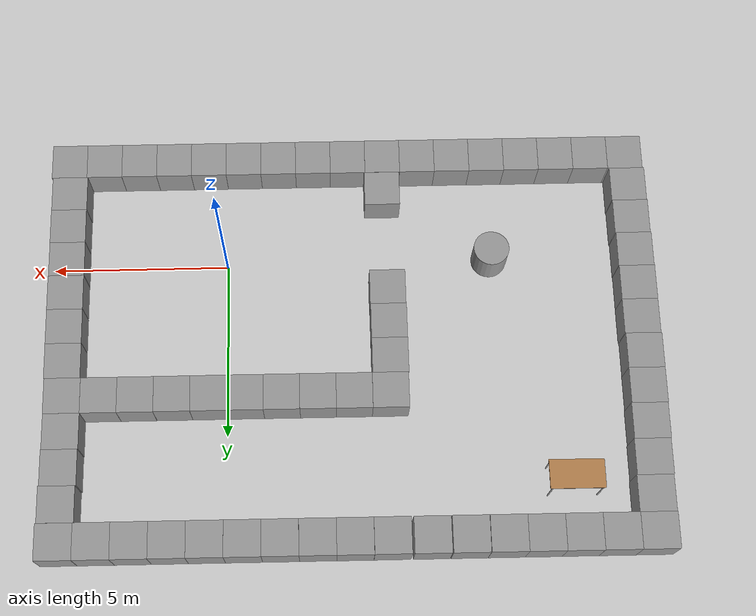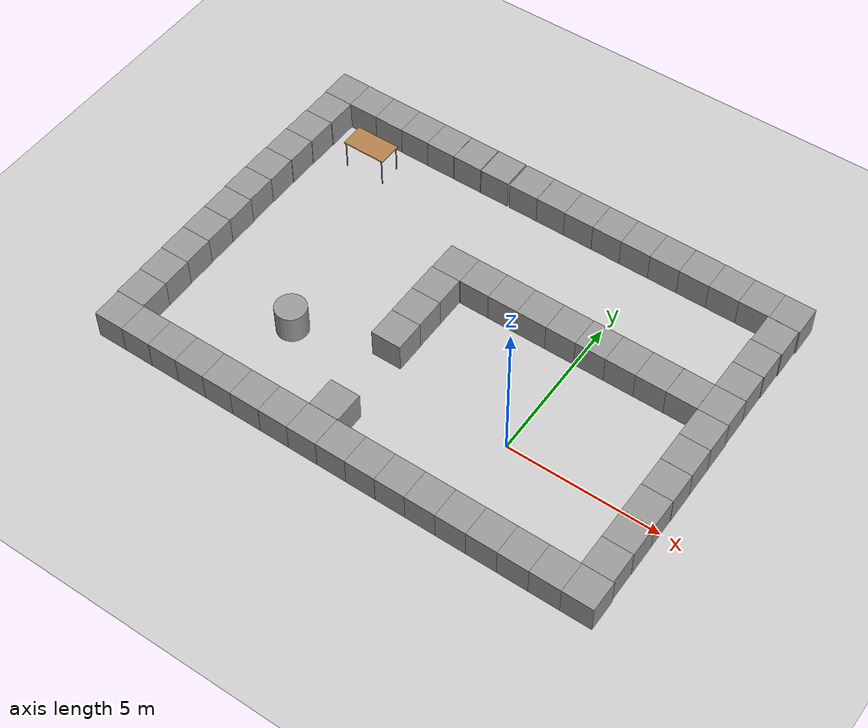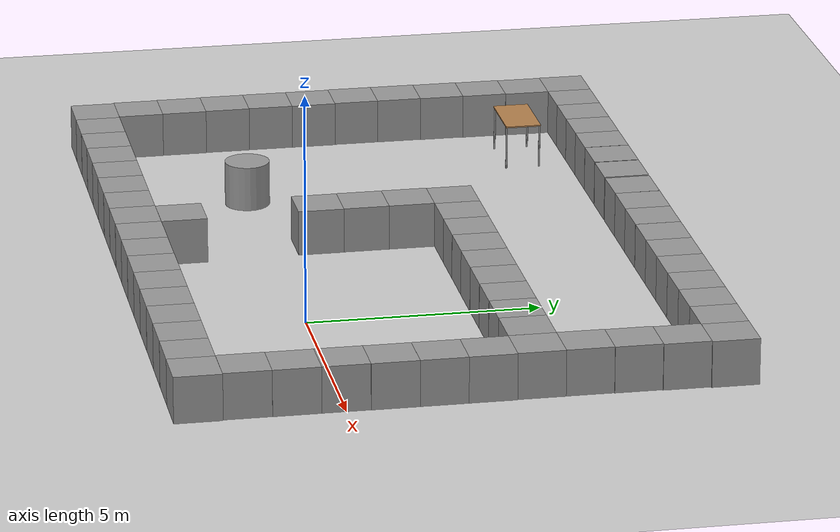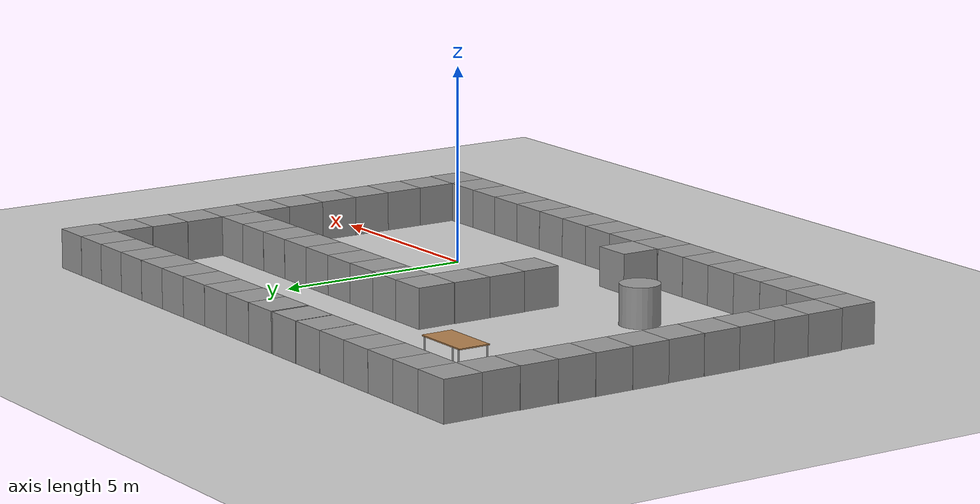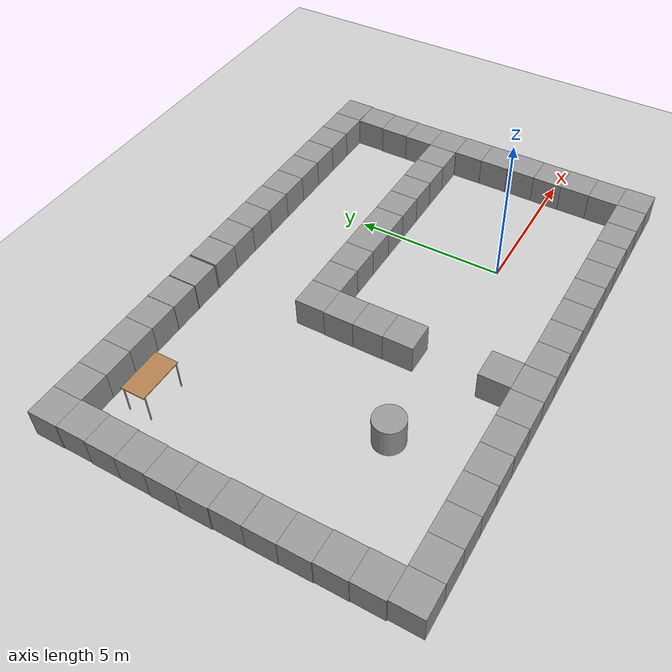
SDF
<sdf version="1.4">
 <world name="default">
  <light name="sun" type="directional">
   <pose>0 0 10 0 -0 0</pose>
   <diffuse>0.8 0.8 0.8 1</diffuse>
   <specular>0.2 0.2 0.2 1</specular>
   <attenuation>
    <range>1000</range>
    <constant>0.9</constant>
    <linear>0.01</linear>
    <quadratic>0.001</quadratic>
   </attenuation>
   <direction>-0.5 0.1 -0.9</direction>
  </light>
  <model name="ground_plane">
   <static>1</static>
   <link name="link">
    <collision name="collision">
     <geometry><plane><normal>0 0 1</normal><size>100 100</size></plane></geometry>
     <surface><friction><ode><mu>100</mu><mu2>50</mu2></ode></friction></surface>
    </collision>
    <visual name="visual">
     <cast_shadows>0</cast_shadows>
     <geometry><plane><normal>0 0 1</normal><size>100 100</size></plane></geometry>
     <material>
      <script><uri>file://media/materials/scripts/gazebo.material</uri><name>Gazebo/Grey</name></script>
     </material>
    </visual>
    <velocity_decay><linear>0</linear><angular>0</angular></velocity_decay>
   </link>
  </model>
  <physics type="ode">
   <max_step_size>0.001</max_step_size>
   <real_time_factor>1</real_time_factor>
   <real_time_update_rate>1000</real_time_update_rate>
   <gravity>0 0 -9.8</gravity>
  </physics>
  <scene><ambient>0.4 0.4 0.4 1</ambient><background>0.7 0.7 0.7 1</background><shadows>1</shadows></scene>
  <spherical_coordinates>
   <surface_model>EARTH_WGS84</surface_model>
   <latitude_deg>0</latitude_deg>
   <longitude_deg>0</longitude_deg>
   <elevation>0</elevation>
   <heading_deg>0</heading_deg>
  </spherical_coordinates>
  <model name="unit_box_7">
   <pose>-0.525235 3.99787 0.5 0 -0 -0.000802</pose>
   <link name="link">
    <inertial>
     <mass>1</mass>
     <inertia><ixx>1</ixx><ixy>0</ixy><ixz>0</ixz><iyy>1</iyy><iyz>0</iyz><izz>1</izz></inertia>
    </inertial>
    <collision name="collision"><geometry><box><size>1 1 1</size></box></geometry></collision>
    <visual name="visual">
     <geometry><box><size>1 1 1</size></box></geometry>
     <material>
      <script><uri>file://media/materials/scripts/gazebo.material</uri><name>Gazebo/Grey</name></script>
     </material>
    </visual>
    <velocity_decay><linear>0</linear><angular>0</angular></velocity_decay>
   </link>
   <static>0</static>
  </model>
  <model name="unit_box_8">
   <pose>0.474774 3.99917 0.5 0 0 -0.000817</pose>
   <link name="link">
    <inertial>
     <mass>1</mass>
     <inertia><ixx>1</ixx><ixy>0</ixy><ixz>0</ixz><iyy>1</iyy><iyz>0</iyz><izz>1</izz></inertia>
    </inertial>
    <collision name="collision"><geometry><box><size>1 1 1</size></box></geometry></collision>
    <visual name="visual">
     <geometry><box><size>1 1 1</size></box></geometry>
     <material>
      <script><uri>file://media/materials/scripts/gazebo.material</uri><name>Gazebo/Grey</name></script>
     </material>
    </visual>
    <velocity_decay><linear>0</linear><angular>0</angular></velocity_decay>
   </link>
   <static>0</static>
  </model>
  <model name="unit_box_9">
   <pose>1.47479 4.0004 0.5 0 -0 -0.00084</pose>
   <link name="link">
    <inertial>
     <mass>1</mass>
     <inertia><ixx>1</ixx><ixy>0</ixy><ixz>0</ixz><iyy>1</iyy><iyz>0</iyz><izz>1</izz></inertia>
    </inertial>
    <collision name="collision"><geometry><box><size>1 1 1</size></box></geometry></collision>
    <visual name="visual">
     <geometry><box><size>1 1 1</size></box></geometry>
     <material>
      <script><uri>file://media/materials/scripts/gazebo.material</uri><name>Gazebo/Grey</name></script>
     </material>
    </visual>
    <velocity_decay><linear>0</linear><angular>0</angular></velocity_decay>
   </link>
   <static>0</static>
  </model>
  <model name="unit_box_10">
   <pose>2.47509 4.0016 0.5 0 0 -0.001434</pose>
   <link name="link">
    <inertial>
     <mass>1</mass>
     <inertia><ixx>1</ixx><ixy>0</ixy><ixz>0</ixz><iyy>1</iyy><iyz>0</iyz><izz>1</izz></inertia>
    </inertial>
    <collision name="collision"><geometry><box><size>1 1 1</size></box></geometry></collision>
    <visual name="visual">
     <geometry><box><size>1 1 1</size></box></geometry>
     <material>
      <script><uri>file://media/materials/scripts/gazebo.material</uri><name>Gazebo/Grey</name></script>
     </material>
    </visual>
    <velocity_decay><linear>0</linear><angular>0</angular></velocity_decay>
   </link>
   <static>0</static>
  </model>
  <model name="unit_box_11">
   <pose>3.47516 4.00138 0.5 0 0 -0.00158</pose>
   <link name="link">
    <inertial>
     <mass>1</mass>
     <inertia><ixx>1</ixx><ixy>0</ixy><ixz>0</ixz><iyy>1</iyy><iyz>0</iyz><izz>1</izz></inertia>
    </inertial>
    <collision name="collision"><geometry><box><size>1 1 1</size></box></geometry></collision>
    <visual name="visual">
     <geometry><box><size>1 1 1</size></box></geometry>
     <material>
      <script><uri>file://media/materials/scripts/gazebo.material</uri><name>Gazebo/Grey</name></script>
     </material>
    </visual>
    <velocity_decay><linear>0</linear><angular>0</angular></velocity_decay>
   </link>
   <static>0</static>
  </model>
  <model name="unit_box_12">
   <pose>4.47567 4.0003 0.5 0 0 -0.000581</pose>
   <link name="link">
    <inertial>
     <mass>1</mass>
     <inertia><ixx>1</ixx><ixy>0</ixy><ixz>0</ixz><iyy>1</iyy><iyz>0</iyz><izz>1</izz></inertia>
    </inertial>
    <collision name="collision"><geometry><box><size>1 1 1</size></box></geometry></collision>
    <visual name="visual">
     <geometry><box><size>1 1 1</size></box></geometry>
     <material>
      <script><uri>file://media/materials/scripts/gazebo.material</uri><name>Gazebo/Grey</name></script>
     </material>
    </visual>
    <velocity_decay><linear>0</linear><angular>0</angular></velocity_decay>
   </link>
   <static>0</static>
  </model>
  <model name="unit_box_13">
   <pose>4.49178 3.00023 0.5 -0 -0 -0.000464</pose>
   <link name="link">
    <inertial>
     <mass>1</mass>
     <inertia><ixx>1</ixx><ixy>0</ixy><ixz>0</ixz><iyy>1</iyy><iyz>0</iyz><izz>1</izz></inertia>
    </inertial>
    <collision name="collision"><geometry><box><size>1 1 1</size></box></geometry></collision>
    <visual name="visual">
     <geometry><box><size>1 1 1</size></box></geometry>
     <material>
      <script><uri>file://media/materials/scripts/gazebo.material</uri><name>Gazebo/Grey</name></script>
     </material>
    </visual>
    <velocity_decay><linear>0</linear><angular>0</angular></velocity_decay>
   </link>
   <static>0</static>
  </model>
  <model name="unit_box_15">
   <pose>4.49385 2.00016 0.5 0 -0 -0.00032</pose>
   <link name="link">
    <inertial>
     <mass>1</mass>
     <inertia><ixx>1</ixx><ixy>0</ixy><ixz>0</ixz><iyy>1</iyy><iyz>0</iyz><izz>1</izz></inertia>
    </inertial>
    <collision name="collision"><geometry><box><size>1 1 1</size></box></geometry></collision>
    <visual name="visual">
     <geometry><box><size>1 1 1</size></box></geometry>
     <material>
      <script><uri>file://media/materials/scripts/gazebo.material</uri><name>Gazebo/Grey</name></script>
     </material>
    </visual>
    <velocity_decay><linear>0</linear><angular>0</angular></velocity_decay>
   </link>
   <static>0</static>
  </model>
  <model name="unit_box_16">
   <pose>4.49609 1.00004 0.5 -0 -0 -7.6e-05</pose>
   <link name="link">
    <inertial>
     <mass>1</mass>
     <inertia><ixx>1</ixx><ixy>0</ixy><ixz>0</ixz><iyy>1</iyy><iyz>0</iyz><izz>1</izz></inertia>
    </inertial>
    <collision name="collision"><geometry><box><size>1 1 1</size></box></geometry></collision>
    <visual name="visual">
     <geometry><box><size>1 1 1</size></box></geometry>
     <material>
      <script><uri>file://media/materials/scripts/gazebo.material</uri><name>Gazebo/Grey</name></script>
     </material>
    </visual>
    <velocity_decay><linear>0</linear><angular>0</angular></velocity_decay>
   </link>
   <static>0</static>
  </model>
  <model name="unit_box_17">
   <pose>4.48887 -1.7e-05 0.5 0 -0 2.9e-05</pose>
   <link name="link">
    <inertial>
     <mass>1</mass>
     <inertia><ixx>1</ixx><ixy>0</ixy><ixz>0</ixz><iyy>1</iyy><iyz>0</iyz><izz>1</izz></inertia>
    </inertial>
    <collision name="collision"><geometry><box><size>1 1 1</size></box></geometry></collision>
    <visual name="visual">
     <geometry><box><size>1 1 1</size></box></geometry>
     <material>
      <script><uri>file://media/materials/scripts/gazebo.material</uri><name>Gazebo/Grey</name></script>
     </material>
    </visual>
    <velocity_decay><linear>0</linear><angular>0</angular></velocity_decay>
   </link>
   <static>0</static>
  </model>
  <model name="unit_box_18">
   <pose>4.49207 -1.00003 0.5 0 -0 4.7e-05</pose>
   <link name="link">
    <inertial>
     <mass>1</mass>
     <inertia><ixx>1</ixx><ixy>0</ixy><ixz>0</ixz><iyy>1</iyy><iyz>0</iyz><izz>1</izz></inertia>
    </inertial>
    <collision name="collision"><geometry><box><size>1 1 1</size></box></geometry></collision>
    <visual name="visual">
     <geometry><box><size>1 1 1</size></box></geometry>
     <material>
      <script><uri>file://media/materials/scripts/gazebo.material</uri><name>Gazebo/Grey</name></script>
     </material>
    </visual>
    <velocity_decay><linear>0</linear><angular>0</angular></velocity_decay>
   </link>
   <static>0</static>
  </model>
  <model name="unit_box_19">
   <pose>4.48708 -2.00004 0.5 0 -0 5.9e-05</pose>
   <link name="link">
    <inertial>
     <mass>1</mass>
     <inertia><ixx>1</ixx><ixy>0</ixy><ixz>0</ixz><iyy>1</iyy><iyz>0</iyz><izz>1</izz></inertia>
    </inertial>
    <collision name="collision"><geometry><box><size>1 1 1</size></box></geometry></collision>
    <visual name="visual">
     <geometry><box><size>1 1 1</size></box></geometry>
     <material>
      <script><uri>file://media/materials/scripts/gazebo.material</uri><name>Gazebo/Grey</name></script>
     </material>
    </visual>
    <velocity_decay><linear>0</linear><angular>0</angular></velocity_decay>
   </link>
   <static>0</static>
  </model>
  <model name="unit_box_20">
   <pose>-1.52537 3.99883 0.5 0 0 -0.000698</pose>
   <link name="link">
    <inertial>
     <mass>1</mass>
     <inertia><ixx>1</ixx><ixy>0</ixy><ixz>0</ixz><iyy>1</iyy><iyz>0</iyz><izz>1</izz></inertia>
    </inertial>
    <collision name="collision"><geometry><box><size>1 1 1</size></box></geometry></collision>
    <visual name="visual">
     <geometry><box><size>1 1 1</size></box></geometry>
     <material>
      <script><uri>file://media/materials/scripts/gazebo.material</uri><name>Gazebo/Grey</name></script>
     </material>
    </visual>
    <velocity_decay><linear>0</linear><angular>0</angular></velocity_decay>
   </link>
   <static>0</static>
  </model>
  <model name="unit_box_21">
   <pose>-2.52541 3.99871 0.5 0 -0 -0.000621</pose>
   <link name="link">
    <inertial>
     <mass>1</mass>
     <inertia><ixx>1</ixx><ixy>0</ixy><ixz>0</ixz><iyy>1</iyy><iyz>0</iyz><izz>1</izz></inertia>
    </inertial>
    <collision name="collision"><geometry><box><size>1 1 1</size></box></geometry></collision>
    <visual name="visual">
     <geometry><box><size>1 1 1</size></box></geometry>
     <material>
      <script><uri>file://media/materials/scripts/gazebo.material</uri><name>Gazebo/Grey</name></script>
     </material>
    </visual>
    <velocity_decay><linear>0</linear><angular>0</angular></velocity_decay>
   </link>
   <static>0</static>
  </model>
  <model name="unit_box_22">
   <pose>-3.52542 3.99981 0.5 0 0 -0.00061</pose>
   <link name="link">
    <inertial>
     <mass>1</mass>
     <inertia><ixx>1</ixx><ixy>0</ixy><ixz>0</ixz><iyy>1</iyy><iyz>0</iyz><izz>1</izz></inertia>
    </inertial>
    <collision name="collision"><geometry><box><size>1 1 1</size></box></geometry></collision>
    <visual name="visual">
     <geometry><box><size>1 1 1</size></box></geometry>
     <material>
      <script><uri>file://media/materials/scripts/gazebo.material</uri><name>Gazebo/Grey</name></script>
     </material>
    </visual>
    <velocity_decay><linear>0</linear><angular>0</angular></velocity_decay>
   </link>
   <static>0</static>
  </model>
  <model name="unit_box_23">
   <pose>-4.52566 3.99948 0.5 0 0 -0.00014</pose>
   <link name="link">
    <inertial>
     <mass>1</mass>
     <inertia><ixx>1</ixx><ixy>0</ixy><ixz>0</ixz><iyy>1</iyy><iyz>0</iyz><izz>1</izz></inertia>
    </inertial>
    <collision name="collision"><geometry><box><size>1 1 1</size></box></geometry></collision>
    <visual name="visual">
     <geometry><box><size>1 1 1</size></box></geometry>
     <material>
      <script><uri>file://media/materials/scripts/gazebo.material</uri><name>Gazebo/Grey</name></script>
     </material>
    </visual>
    <velocity_decay><linear>0</linear><angular>0</angular></velocity_decay>
   </link>
   <static>0</static>
  </model>
  <model name="unit_box_24">
   <pose>-4.54022 2.99948 0.5 0 0 -0.000141</pose>
   <link name="link">
    <inertial>
     <mass>1</mass>
     <inertia><ixx>1</ixx><ixy>0</ixy><ixz>0</ixz><iyy>1</iyy><iyz>0</iyz><izz>1</izz></inertia>
    </inertial>
    <collision name="collision"><geometry><box><size>1 1 1</size></box></geometry></collision>
    <visual name="visual">
     <geometry><box><size>1 1 1</size></box></geometry>
     <material>
      <script><uri>file://media/materials/scripts/gazebo.material</uri><name>Gazebo/Grey</name></script>
     </material>
    </visual>
    <velocity_decay><linear>0</linear><angular>0</angular></velocity_decay>
   </link>
   <static>0</static>
  </model>
  <model name="unit_box_25">
   <pose>-4.53725 1.99945 0.5 -0 -0 -9.5e-05</pose>
   <link name="link">
    <inertial>
     <mass>1</mass>
     <inertia><ixx>1</ixx><ixy>0</ixy><ixz>0</ixz><iyy>1</iyy><iyz>0</iyz><izz>1</izz></inertia>
    </inertial>
    <collision name="collision"><geometry><box><size>1 1 1</size></box></geometry></collision>
    <visual name="visual">
     <geometry><box><size>1 1 1</size></box></geometry>
     <material>
      <script><uri>file://media/materials/scripts/gazebo.material</uri><name>Gazebo/Grey</name></script>
     </material>
    </visual>
    <velocity_decay><linear>0</linear><angular>0</angular></velocity_decay>
   </link>
   <static>0</static>
  </model>
  <model name="unit_box_26">
   <pose>-4.52762 0.999429 0.5 0 0 -4.9e-05</pose>
   <link name="link">
    <inertial>
     <mass>1</mass>
     <inertia><ixx>1</ixx><ixy>0</ixy><ixz>0</ixz><iyy>1</iyy><iyz>0</iyz><izz>1</izz></inertia>
    </inertial>
    <collision name="collision"><geometry><box><size>1 1 1</size></box></geometry></collision>
    <visual name="visual">
     <geometry><box><size>1 1 1</size></box></geometry>
     <material>
      <script><uri>file://media/materials/scripts/gazebo.material</uri><name>Gazebo/Grey</name></script>
     </material>
    </visual>
    <velocity_decay><linear>0</linear><angular>0</angular></velocity_decay>
   </link>
   <static>0</static>
  </model>
  <model name="unit_box_27">
   <pose>-4.45488 -1.99895 0.5 0 -0 0.000499</pose>
   <link name="link">
    <inertial>
     <mass>1</mass>
     <inertia><ixx>1</ixx><ixy>0</ixy><ixz>0</ixz><iyy>1</iyy><iyz>0</iyz><izz>1</izz></inertia>
    </inertial>
    <collision name="collision"><geometry><box><size>1 1 1</size></box></geometry></collision>
    <visual name="visual">
     <geometry><box><size>1 1 1</size></box></geometry>
     <material>
      <script><uri>file://media/materials/scripts/gazebo.material</uri><name>Gazebo/Grey</name></script>
     </material>
    </visual>
    <velocity_decay><linear>0</linear><angular>0</angular></velocity_decay>
   </link>
   <static>0</static>
  </model>
  <model name="unit_box_28">
   <pose>-4.48187 -3.00124 0.5 -0 -0 -0.000582</pose>
   <link name="link">
    <inertial>
     <mass>1</mass>
     <inertia><ixx>1</ixx><ixy>0</ixy><ixz>0</ixz><iyy>1</iyy><iyz>0</iyz><izz>1</izz></inertia>
    </inertial>
    <collision name="collision"><geometry><box><size>1 1 1</size></box></geometry></collision>
    <visual name="visual">
     <geometry><box><size>1 1 1</size></box></geometry>
     <material>
      <script><uri>file://media/materials/scripts/gazebo.material</uri><name>Gazebo/Grey</name></script>
     </material>
    </visual>
    <velocity_decay><linear>0</linear><angular>0</angular></velocity_decay>
   </link>
   <static>0</static>
  </model>
  <model name="unit_box_29">
   <pose>-3.48178 -2.99971 0.5 -0 -0 -0.000409</pose>
   <link name="link">
    <inertial>
     <mass>1</mass>
     <inertia><ixx>1</ixx><ixy>0</ixy><ixz>0</ixz><iyy>1</iyy><iyz>0</iyz><izz>1</izz></inertia>
    </inertial>
    <collision name="collision"><geometry><box><size>1 1 1</size></box></geometry></collision>
    <visual name="visual">
     <geometry><box><size>1 1 1</size></box></geometry>
     <material>
      <script><uri>file://media/materials/scripts/gazebo.material</uri><name>Gazebo/Grey</name></script>
     </material>
    </visual>
    <velocity_decay><linear>0</linear><angular>0</angular></velocity_decay>
   </link>
   <static>0</static>
  </model>
  <model name="unit_box_30">
   <pose>-2.48176 -3.00148 0.5 0 -0 -0.000372</pose>
   <link name="link">
    <inertial>
     <mass>1</mass>
     <inertia><ixx>1</ixx><ixy>0</ixy><ixz>0</ixz><iyy>1</iyy><iyz>0</iyz><izz>1</izz></inertia>
    </inertial>
    <collision name="collision"><geometry><box><size>1 1 1</size></box></geometry></collision>
    <visual name="visual">
     <geometry><box><size>1 1 1</size></box></geometry>
     <material>
      <script><uri>file://media/materials/scripts/gazebo.material</uri><name>Gazebo/Grey</name></script>
     </material>
    </visual>
    <velocity_decay><linear>0</linear><angular>0</angular></velocity_decay>
   </link>
   <static>0</static>
  </model>
  <model name="unit_box_31">
   <pose>-1.48175 -3.00062 0.5 0 -0 -0.00034</pose>
   <link name="link">
    <inertial>
     <mass>1</mass>
     <inertia><ixx>1</ixx><ixy>0</ixy><ixz>0</ixz><iyy>1</iyy><iyz>0</iyz><izz>1</izz></inertia>
    </inertial>
    <collision name="collision"><geometry><box><size>1 1 1</size></box></geometry></collision>
    <visual name="visual">
     <geometry><box><size>1 1 1</size></box></geometry>
     <material>
      <script><uri>file://media/materials/scripts/gazebo.material</uri><name>Gazebo/Grey</name></script>
     </material>
    </visual>
    <velocity_decay><linear>0</linear><angular>0</angular></velocity_decay>
   </link>
   <static>0</static>
  </model>
  <model name="unit_box_32">
   <pose>-0.481731 -3.00074 0.5 0 0 -0.000315</pose>
   <link name="link">
    <inertial>
     <mass>1</mass>
     <inertia><ixx>1</ixx><ixy>0</ixy><ixz>0</ixz><iyy>1</iyy><iyz>0</iyz><izz>1</izz></inertia>
    </inertial>
    <collision name="collision"><geometry><box><size>1 1 1</size></box></geometry></collision>
    <visual name="visual">
     <geometry><box><size>1 1 1</size></box></geometry>
     <material>
      <script><uri>file://media/materials/scripts/gazebo.material</uri><name>Gazebo/Grey</name></script>
     </material>
    </visual>
    <velocity_decay><linear>0</linear><angular>0</angular></velocity_decay>
   </link>
   <static>0</static>
  </model>
  <model name="unit_box_33">
   <pose>0.518274 -3.00075 0.5 0 0 -0.00031</pose>
   <link name="link">
    <inertial>
     <mass>1</mass>
     <inertia><ixx>1</ixx><ixy>0</ixy><ixz>0</ixz><iyy>1</iyy><iyz>0</iyz><izz>1</izz></inertia>
    </inertial>
    <collision name="collision"><geometry><box><size>1 1 1</size></box></geometry></collision>
    <visual name="visual">
     <geometry><box><size>1 1 1</size></box></geometry>
     <material>
      <script><uri>file://media/materials/scripts/gazebo.material</uri><name>Gazebo/Grey</name></script>
     </material>
    </visual>
    <velocity_decay><linear>0</linear><angular>0</angular></velocity_decay>
   </link>
   <static>0</static>
  </model>
  <model name="unit_box_34">
   <pose>1.51828 -2.9994 0.5 0 -0 -0.000298</pose>
   <link name="link">
    <inertial>
     <mass>1</mass>
     <inertia><ixx>1</ixx><ixy>0</ixy><ixz>0</ixz><iyy>1</iyy><iyz>0</iyz><izz>1</izz></inertia>
    </inertial>
    <collision name="collision"><geometry><box><size>1 1 1</size></box></geometry></collision>
    <visual name="visual">
     <geometry><box><size>1 1 1</size></box></geometry>
     <material>
      <script><uri>file://media/materials/scripts/gazebo.material</uri><name>Gazebo/Grey</name></script>
     </material>
    </visual>
    <velocity_decay><linear>0</linear><angular>0</angular></velocity_decay>
   </link>
   <static>0</static>
  </model>
  <model name="unit_box_35">
   <pose>2.51828 -3.00046 0.5 0 0 -0.000297</pose>
   <link name="link">
    <inertial>
     <mass>1</mass>
     <inertia><ixx>1</ixx><ixy>0</ixy><ixz>0</ixz><iyy>1</iyy><iyz>0</iyz><izz>1</izz></inertia>
    </inertial>
    <collision name="collision"><geometry><box><size>1 1 1</size></box></geometry></collision>
    <visual name="visual">
     <geometry><box><size>1 1 1</size></box></geometry>
     <material>
      <script><uri>file://media/materials/scripts/gazebo.material</uri><name>Gazebo/Grey</name></script>
     </material>
    </visual>
    <velocity_decay><linear>0</linear><angular>0</angular></velocity_decay>
   </link>
   <static>0</static>
  </model>
  <model name="unit_box_36">
   <pose>3.51829 -3.0001 0.5 0 0 -0.000283</pose>
   <link name="link">
    <inertial>
     <mass>1</mass>
     <inertia><ixx>1</ixx><ixy>0</ixy><ixz>0</ixz><iyy>1</iyy><iyz>0</iyz><izz>1</izz></inertia>
    </inertial>
    <collision name="collision"><geometry><box><size>1 1 1</size></box></geometry></collision>
    <visual name="visual">
     <geometry><box><size>1 1 1</size></box></geometry>
     <material>
      <script><uri>file://media/materials/scripts/gazebo.material</uri><name>Gazebo/Grey</name></script>
     </material>
    </visual>
    <velocity_decay><linear>0</linear><angular>0</angular></velocity_decay>
   </link>
   <static>0</static>
  </model>
  <model name="unit_box_37">
   <pose>4.51829 -3.00038 0.5 -0 -0 -0.000283</pose>
   <link name="link">
    <inertial>
     <mass>1</mass>
     <inertia><ixx>1</ixx><ixy>0</ixy><ixz>0</ixz><iyy>1</iyy><iyz>0</iyz><izz>1</izz></inertia>
    </inertial>
    <collision name="collision"><geometry><box><size>1 1 1</size></box></geometry></collision>
    <visual name="visual">
     <geometry><box><size>1 1 1</size></box></geometry>
     <material>
      <script><uri>file://media/materials/scripts/gazebo.material</uri><name>Gazebo/Grey</name></script>
     </material>
    </visual>
    <velocity_decay><linear>0</linear><angular>0</angular></velocity_decay>
   </link>
   <static>0</static>
  </model>
  <model name="unit_box_38">
   <pose>-5.48187 -3.00144 0.5 0 0 -0.000586</pose>
   <link name="link">
    <inertial>
     <mass>1</mass>
     <inertia><ixx>1</ixx><ixy>0</ixy><ixz>0</ixz><iyy>1</iyy><iyz>0</iyz><izz>1</izz></inertia>
    </inertial>
    <collision name="collision"><geometry><box><size>1 1 1</size></box></geometry></collision>
    <visual name="visual">
     <geometry><box><size>1 1 1</size></box></geometry>
     <material>
      <script><uri>file://media/materials/scripts/gazebo.material</uri><name>Gazebo/Grey</name></script>
     </material>
    </visual>
    <velocity_decay><linear>0</linear><angular>0</angular></velocity_decay>
   </link>
   <static>0</static>
  </model>
  <model name="unit_box_39">
   <pose>-6.48188 -3.00217 0.5 0 -0 -0.00059</pose>
   <link name="link">
    <inertial>
     <mass>1</mass>
     <inertia><ixx>1</ixx><ixy>0</ixy><ixz>0</ixz><iyy>1</iyy><iyz>0</iyz><izz>1</izz></inertia>
    </inertial>
    <collision name="collision"><geometry><box><size>1 1 1</size></box></geometry></collision>
    <visual name="visual">
     <geometry><box><size>1 1 1</size></box></geometry>
     <material>
      <script><uri>file://media/materials/scripts/gazebo.material</uri><name>Gazebo/Grey</name></script>
     </material>
    </visual>
    <velocity_decay><linear>0</linear><angular>0</angular></velocity_decay>
   </link>
   <static>0</static>
  </model>
  <model name="unit_box_40">
   <pose>-7.48188 -2.99993 0.5 0 -0 -0.000578</pose>
   <link name="link">
    <inertial>
     <mass>1</mass>
     <inertia><ixx>1</ixx><ixy>0</ixy><ixz>0</ixz><iyy>1</iyy><iyz>0</iyz><izz>1</izz></inertia>
    </inertial>
    <collision name="collision"><geometry><box><size>1 1 1</size></box></geometry></collision>
    <visual name="visual">
     <geometry><box><size>1 1 1</size></box></geometry>
     <material>
      <script><uri>file://media/materials/scripts/gazebo.material</uri><name>Gazebo/Grey</name></script>
     </material>
    </visual>
    <velocity_decay><linear>0</linear><angular>0</angular></velocity_decay>
   </link>
   <static>0</static>
  </model>
  <model name="unit_box_41">
   <pose>-8.48189 -2.99949 0.5 0 0 -0.000566</pose>
   <link name="link">
    <inertial>
     <mass>1</mass>
     <inertia><ixx>1</ixx><ixy>0</ixy><ixz>0</ixz><iyy>1</iyy><iyz>0</iyz><izz>1</izz></inertia>
    </inertial>
    <collision name="collision"><geometry><box><size>1 1 1</size></box></geometry></collision>
    <visual name="visual">
     <geometry><box><size>1 1 1</size></box></geometry>
     <material>
      <script><uri>file://media/materials/scripts/gazebo.material</uri><name>Gazebo/Grey</name></script>
     </material>
    </visual>
    <velocity_decay><linear>0</linear><angular>0</angular></velocity_decay>
   </link>
   <static>0</static>
  </model>
  <model name="unit_box_42">
   <pose>-9.4819 -2.99989 0.5 0 0 -0.000552</pose>
   <link name="link">
    <inertial>
     <mass>1</mass>
     <inertia><ixx>1</ixx><ixy>0</ixy><ixz>0</ixz><iyy>1</iyy><iyz>0</iyz><izz>1</izz></inertia>
    </inertial>
    <collision name="collision"><geometry><box><size>1 1 1</size></box></geometry></collision>
    <visual name="visual">
     <geometry><box><size>1 1 1</size></box></geometry>
     <material>
      <script><uri>file://media/materials/scripts/gazebo.material</uri><name>Gazebo/Grey</name></script>
     </material>
    </visual>
    <velocity_decay><linear>0</linear><angular>0</angular></velocity_decay>
   </link>
   <static>0</static>
  </model>
  <model name="unit_box_43">
   <pose>-10.4819 -3.00141 0.5 0 0 -0.000549</pose>
   <link name="link">
    <inertial>
     <mass>1</mass>
     <inertia><ixx>1</ixx><ixy>0</ixy><ixz>0</ixz><iyy>1</iyy><iyz>0</iyz><izz>1</izz></inertia>
    </inertial>
    <collision name="collision"><geometry><box><size>1 1 1</size></box></geometry></collision>
    <visual name="visual">
     <geometry><box><size>1 1 1</size></box></geometry>
     <material>
      <script><uri>file://media/materials/scripts/gazebo.material</uri><name>Gazebo/Grey</name></script>
     </material>
    </visual>
    <velocity_decay><linear>0</linear><angular>0</angular></velocity_decay>
   </link>
   <static>0</static>
  </model>
  <model name="unit_box_44">
   <pose>-11.482 -3.00024 0.5 -0 -0 -0.000415</pose>
   <link name="link">
    <inertial>
     <mass>1</mass>
     <inertia><ixx>1</ixx><ixy>0</ixy><ixz>0</ixz><iyy>1</iyy><iyz>0</iyz><izz>1</izz></inertia>
    </inertial>
    <collision name="collision"><geometry><box><size>1 1 1</size></box></geometry></collision>
    <visual name="visual">
     <geometry><box><size>1 1 1</size></box></geometry>
     <material>
      <script><uri>file://media/materials/scripts/gazebo.material</uri><name>Gazebo/Grey</name></script>
     </material>
    </visual>
    <velocity_decay><linear>0</linear><angular>0</angular></velocity_decay>
   </link>
   <static>0</static>
  </model>
  <model name="unit_box_45">
   <pose>-11.5216 -2.00004 0.5 0 0 -2.4e-05</pose>
   <link name="link">
    <inertial>
     <mass>1</mass>
     <inertia><ixx>1</ixx><ixy>0</ixy><ixz>0</ixz><iyy>1</iyy><iyz>0</iyz><izz>1</izz></inertia>
    </inertial>
    <collision name="collision"><geometry><box><size>1 1 1</size></box></geometry></collision>
    <visual name="visual">
     <geometry><box><size>1 1 1</size></box></geometry>
     <material>
      <script><uri>file://media/materials/scripts/gazebo.material</uri><name>Gazebo/Grey</name></script>
     </material>
    </visual>
    <velocity_decay><linear>0</linear><angular>0</angular></velocity_decay>
   </link>
   <static>0</static>
  </model>
  <model name="unit_box_48">
   <pose>-11.5344 -1.00003 0.5 0 0 -1.2e-05</pose>
   <link name="link">
    <inertial>
     <mass>1</mass>
     <inertia><ixx>1</ixx><ixy>0</ixy><ixz>0</ixz><iyy>1</iyy><iyz>0</iyz><izz>1</izz></inertia>
    </inertial>
    <collision name="collision"><geometry><box><size>1 1 1</size></box></geometry></collision>
    <visual name="visual">
     <geometry><box><size>1 1 1</size></box></geometry>
     <material>
      <script><uri>file://media/materials/scripts/gazebo.material</uri><name>Gazebo/Grey</name></script>
     </material>
    </visual>
    <velocity_decay><linear>0</linear><angular>0</angular></velocity_decay>
   </link>
   <static>0</static>
  </model>
  <model name="unit_box_49">
   <pose>-11.5536 -3.3e-05 0.5 0 0 -1.2e-05</pose>
   <link name="link">
    <inertial>
     <mass>1</mass>
     <inertia><ixx>1</ixx><ixy>0</ixy><ixz>0</ixz><iyy>1</iyy><iyz>0</iyz><izz>1</izz></inertia>
    </inertial>
    <collision name="collision"><geometry><box><size>1 1 1</size></box></geometry></collision>
    <visual name="visual">
     <geometry><box><size>1 1 1</size></box></geometry>
     <material>
      <script><uri>file://media/materials/scripts/gazebo.material</uri><name>Gazebo/Grey</name></script>
     </material>
    </visual>
    <velocity_decay><linear>0</linear><angular>0</angular></velocity_decay>
   </link>
   <static>0</static>
  </model>
  <model name="unit_box_50">
   <pose>-11.5631 0.999972 0.5 -0 -0 -6e-06</pose>
   <link name="link">
    <inertial>
     <mass>1</mass>
     <inertia><ixx>1</ixx><ixy>0</ixy><ixz>0</ixz><iyy>1</iyy><iyz>0</iyz><izz>1</izz></inertia>
    </inertial>
    <collision name="collision"><geometry><box><size>1 1 1</size></box></geometry></collision>
    <visual name="visual">
     <geometry><box><size>1 1 1</size></box></geometry>
     <material>
      <script><uri>file://media/materials/scripts/gazebo.material</uri><name>Gazebo/Grey</name></script>
     </material>
    </visual>
    <velocity_decay><linear>0</linear><angular>0</angular></velocity_decay>
   </link>
   <static>0</static>
  </model>
  <model name="unit_box_51">
   <pose>-11.5614 1.99998 0.5 0 -0 2e-06</pose>
   <link name="link">
    <inertial>
     <mass>1</mass>
     <inertia><ixx>1</ixx><ixy>0</ixy><ixz>0</ixz><iyy>1</iyy><iyz>0</iyz><izz>1</izz></inertia>
    </inertial>
    <collision name="collision"><geometry><box><size>1 1 1</size></box></geometry></collision>
    <visual name="visual">
     <geometry><box><size>1 1 1</size></box></geometry>
     <material>
      <script><uri>file://media/materials/scripts/gazebo.material</uri><name>Gazebo/Grey</name></script>
     </material>
    </visual>
    <velocity_decay><linear>0</linear><angular>0</angular></velocity_decay>
   </link>
   <static>0</static>
  </model>
  <model name="unit_box_52">
   <pose>-11.5812 2.99998 0.5 0 -0 7e-06</pose>
   <link name="link">
    <inertial>
     <mass>1</mass>
     <inertia><ixx>1</ixx><ixy>0</ixy><ixz>0</ixz><iyy>1</iyy><iyz>0</iyz><izz>1</izz></inertia>
    </inertial>
    <collision name="collision"><geometry><box><size>1 1 1</size></box></geometry></collision>
    <visual name="visual">
     <geometry><box><size>1 1 1</size></box></geometry>
     <material>
      <script><uri>file://media/materials/scripts/gazebo.material</uri><name>Gazebo/Grey</name></script>
     </material>
    </visual>
    <velocity_decay><linear>0</linear><angular>0</angular></velocity_decay>
   </link>
   <static>0</static>
  </model>
  <model name="unit_box_53">
   <pose>-11.5785 3.99998 0.5 0 -0 8e-06</pose>
   <link name="link">
    <inertial>
     <mass>1</mass>
     <inertia><ixx>1</ixx><ixy>0</ixy><ixz>0</ixz><iyy>1</iyy><iyz>0</iyz><izz>1</izz></inertia>
    </inertial>
    <collision name="collision"><geometry><box><size>1 1 1</size></box></geometry></collision>
    <visual name="visual">
     <geometry><box><size>1 1 1</size></box></geometry>
     <material>
      <script><uri>file://media/materials/scripts/gazebo.material</uri><name>Gazebo/Grey</name></script>
     </material>
    </visual>
    <velocity_decay><linear>0</linear><angular>0</angular></velocity_decay>
   </link>
   <static>0</static>
  </model>
  <model name="unit_box_54">
   <pose>-11.5656 4.99998 0.5 0 -0 8e-06</pose>
   <link name="link">
    <inertial>
     <mass>1</mass>
     <inertia><ixx>1</ixx><ixy>0</ixy><ixz>0</ixz><iyy>1</iyy><iyz>0</iyz><izz>1</izz></inertia>
    </inertial>
    <collision name="collision"><geometry><box><size>1 1 1</size></box></geometry></collision>
    <visual name="visual">
     <geometry><box><size>1 1 1</size></box></geometry>
     <material>
      <script><uri>file://media/materials/scripts/gazebo.material</uri><name>Gazebo/Grey</name></script>
     </material>
    </visual>
    <velocity_decay><linear>0</linear><angular>0</angular></velocity_decay>
   </link>
   <static>0</static>
  </model>
  <model name="unit_box_55">
   <pose>-11.5518 5.99998 0.5 0 -0 9e-06</pose>
   <link name="link">
    <inertial>
     <mass>1</mass>
     <inertia><ixx>1</ixx><ixy>0</ixy><ixz>0</ixz><iyy>1</iyy><iyz>0</iyz><izz>1</izz></inertia>
    </inertial>
    <collision name="collision"><geometry><box><size>1 1 1</size></box></geometry></collision>
    <visual name="visual">
     <geometry><box><size>1 1 1</size></box></geometry>
     <material>
      <script><uri>file://media/materials/scripts/gazebo.material</uri><name>Gazebo/Grey</name></script>
     </material>
    </visual>
    <velocity_decay><linear>0</linear><angular>0</angular></velocity_decay>
   </link>
   <static>0</static>
  </model>
  <model name="unit_box_56">
   <pose>-11.5349 7.00002 0.5 0 -0 7e-05</pose>
   <link name="link">
    <inertial>
     <mass>1</mass>
     <inertia><ixx>1</ixx><ixy>0</ixy><ixz>0</ixz><iyy>1</iyy><iyz>0</iyz><izz>1</izz></inertia>
    </inertial>
    <collision name="collision"><geometry><box><size>1 1 1</size></box></geometry></collision>
    <visual name="visual">
     <geometry><box><size>1 1 1</size></box></geometry>
     <material>
      <script><uri>file://media/materials/scripts/gazebo.material</uri><name>Gazebo/Grey</name></script>
     </material>
    </visual>
    <velocity_decay><linear>0</linear><angular>0</angular></velocity_decay>
   </link>
   <static>0</static>
  </model>
  <model name="unit_box_57">
   <pose>-11.5478 8.00012 0.5 0 0 -7e-06</pose>
   <link name="link">
    <inertial>
     <mass>1</mass>
     <inertia><ixx>1</ixx><ixy>0</ixy><ixz>0</ixz><iyy>1</iyy><iyz>0</iyz><izz>1</izz></inertia>
    </inertial>
    <collision name="collision"><geometry><box><size>1 1 1</size></box></geometry></collision>
    <visual name="visual">
     <geometry><box><size>1 1 1</size></box></geometry>
     <material>
      <script><uri>file://media/materials/scripts/gazebo.material</uri><name>Gazebo/Grey</name></script>
     </material>
    </visual>
    <velocity_decay><linear>0</linear><angular>0</angular></velocity_decay>
   </link>
   <static>0</static>
  </model>
  <model name="unit_box_58">
   <pose>4.47027 5.00045 0.5 0 -0 -0.000281</pose>
   <link name="link">
    <inertial>
     <mass>1</mass>
     <inertia><ixx>1</ixx><ixy>0</ixy><ixz>0</ixz><iyy>1</iyy><iyz>0</iyz><izz>1</izz></inertia>
    </inertial>
    <collision name="collision"><geometry><box><size>1 1 1</size></box></geometry></collision>
    <visual name="visual">
     <geometry><box><size>1 1 1</size></box></geometry>
     <material>
      <script><uri>file://media/materials/scripts/gazebo.material</uri><name>Gazebo/Grey</name></script>
     </material>
    </visual>
    <velocity_decay><linear>0</linear><angular>0</angular></velocity_decay>
   </link>
   <static>0</static>
  </model>
  <model name="unit_box_59">
   <pose>4.48389 6.00048 0.5 -0 -0 -0.00023</pose>
   <link name="link">
    <inertial>
     <mass>1</mass>
     <inertia><ixx>1</ixx><ixy>0</ixy><ixz>0</ixz><iyy>1</iyy><iyz>0</iyz><izz>1</izz></inertia>
    </inertial>
    <collision name="collision"><geometry><box><size>1 1 1</size></box></geometry></collision>
    <visual name="visual">
     <geometry><box><size>1 1 1</size></box></geometry>
     <material>
      <script><uri>file://media/materials/scripts/gazebo.material</uri><name>Gazebo/Grey</name></script>
     </material>
    </visual>
    <velocity_decay><linear>0</linear><angular>0</angular></velocity_decay>
   </link>
   <static>0</static>
  </model>
  <model name="unit_box_60">
   <pose>4.5091 7.00049 0.5 -0 -0 -0.000193</pose>
   <link name="link">
    <inertial>
     <mass>1</mass>
     <inertia><ixx>1</ixx><ixy>0</ixy><ixz>0</ixz><iyy>1</iyy><iyz>0</iyz><izz>1</izz></inertia>
    </inertial>
    <collision name="collision"><geometry><box><size>1 1 1</size></box></geometry></collision>
    <visual name="visual">
     <geometry><box><size>1 1 1</size></box></geometry>
     <material>
      <script><uri>file://media/materials/scripts/gazebo.material</uri><name>Gazebo/Grey</name></script>
     </material>
    </visual>
    <velocity_decay><linear>0</linear><angular>0</angular></velocity_decay>
   </link>
   <static>0</static>
  </model>
  <model name="unit_box_61">
   <pose>4.54332 8.00161 0.5 -0 -0 -0.00023</pose>
   <link name="link">
    <inertial>
     <mass>1</mass>
     <inertia><ixx>1</ixx><ixy>0</ixy><ixz>0</ixz><iyy>1</iyy><iyz>0</iyz><izz>1</izz></inertia>
    </inertial>
    <collision name="collision"><geometry><box><size>1 1 1</size></box></geometry></collision>
    <visual name="visual">
     <geometry><box><size>1 1 1</size></box></geometry>
     <material>
      <script><uri>file://media/materials/scripts/gazebo.material</uri><name>Gazebo/Grey</name></script>
     </material>
    </visual>
    <velocity_decay><linear>0</linear><angular>0</angular></velocity_decay>
   </link>
   <static>0</static>
  </model>
  <model name="unit_box_62">
   <pose>3.54327 8.0007 0.5 0 0 -0.00015</pose>
   <link name="link">
    <inertial>
     <mass>1</mass>
     <inertia><ixx>1</ixx><ixy>0</ixy><ixz>0</ixz><iyy>1</iyy><iyz>0</iyz><izz>1</izz></inertia>
    </inertial>
    <collision name="collision"><geometry><box><size>1 1 1</size></box></geometry></collision>
    <visual name="visual">
     <geometry><box><size>1 1 1</size></box></geometry>
     <material>
      <script><uri>file://media/materials/scripts/gazebo.material</uri><name>Gazebo/Grey</name></script>
     </material>
    </visual>
    <velocity_decay><linear>0</linear><angular>0</angular></velocity_decay>
   </link>
   <static>0</static>
  </model>
  <model name="unit_box_63">
   <pose>2.54326 8.00064 0.5 0 0 -0.000153</pose>
   <link name="link">
    <inertial>
     <mass>1</mass>
     <inertia><ixx>1</ixx><ixy>0</ixy><ixz>0</ixz><iyy>1</iyy><iyz>0</iyz><izz>1</izz></inertia>
    </inertial>
    <collision name="collision"><geometry><box><size>1 1 1</size></box></geometry></collision>
    <visual name="visual">
     <geometry><box><size>1 1 1</size></box></geometry>
     <material>
      <script><uri>file://media/materials/scripts/gazebo.material</uri><name>Gazebo/Grey</name></script>
     </material>
    </visual>
    <velocity_decay><linear>0</linear><angular>0</angular></velocity_decay>
   </link>
   <static>0</static>
  </model>
  <model name="unit_box_64">
   <pose>1.54325 8.00029 0.5 0 0 -0.000153</pose>
   <link name="link">
    <inertial>
     <mass>1</mass>
     <inertia><ixx>1</ixx><ixy>0</ixy><ixz>0</ixz><iyy>1</iyy><iyz>0</iyz><izz>1</izz></inertia>
    </inertial>
    <collision name="collision"><geometry><box><size>1 1 1</size></box></geometry></collision>
    <visual name="visual">
     <geometry><box><size>1 1 1</size></box></geometry>
     <material>
      <script><uri>file://media/materials/scripts/gazebo.material</uri><name>Gazebo/Grey</name></script>
     </material>
    </visual>
    <velocity_decay><linear>0</linear><angular>0</angular></velocity_decay>
   </link>
   <static>0</static>
  </model>
  <model name="unit_box_65">
   <pose>0.543144 7.99968 0.5 0 -0 -0.000134</pose>
   <link name="link">
    <inertial>
     <mass>1</mass>
     <inertia><ixx>1</ixx><ixy>0</ixy><ixz>0</ixz><iyy>1</iyy><iyz>0</iyz><izz>1</izz></inertia>
    </inertial>
    <collision name="collision"><geometry><box><size>1 1 1</size></box></geometry></collision>
    <visual name="visual">
     <geometry><box><size>1 1 1</size></box></geometry>
     <material>
      <script><uri>file://media/materials/scripts/gazebo.material</uri><name>Gazebo/Grey</name></script>
     </material>
    </visual>
    <velocity_decay><linear>0</linear><angular>0</angular></velocity_decay>
   </link>
   <static>0</static>
  </model>
  <model name="unit_box_66">
   <pose>-0.456996 8.00004 0.5 -0 -0 -0.00013</pose>
   <link name="link">
    <inertial>
     <mass>1</mass>
     <inertia><ixx>1</ixx><ixy>0</ixy><ixz>0</ixz><iyy>1</iyy><iyz>0</iyz><izz>1</izz></inertia>
    </inertial>
    <collision name="collision"><geometry><box><size>1 1 1</size></box></geometry></collision>
    <visual name="visual">
     <geometry><box><size>1 1 1</size></box></geometry>
     <material>
      <script><uri>file://media/materials/scripts/gazebo.material</uri><name>Gazebo/Grey</name></script>
     </material>
    </visual>
    <velocity_decay><linear>0</linear><angular>0</angular></velocity_decay>
   </link>
   <static>0</static>
  </model>
  <model name="unit_box_67">
   <pose>-1.45701 7.99986 0.5 0 -0 -0.000132</pose>
   <link name="link">
    <inertial>
     <mass>1</mass>
     <inertia><ixx>1</ixx><ixy>0</ixy><ixz>0</ixz><iyy>1</iyy><iyz>0</iyz><izz>1</izz></inertia>
    </inertial>
    <collision name="collision"><geometry><box><size>1 1 1</size></box></geometry></collision>
    <visual name="visual">
     <geometry><box><size>1 1 1</size></box></geometry>
     <material>
      <script><uri>file://media/materials/scripts/gazebo.material</uri><name>Gazebo/Grey</name></script>
     </material>
    </visual>
    <velocity_decay><linear>0</linear><angular>0</angular></velocity_decay>
   </link>
   <static>0</static>
  </model>
  <model name="unit_box_68">
   <pose>-2.4581 7.99903 0.5 0 -0 -0.001334</pose>
   <link name="link">
    <inertial>
     <mass>1</mass>
     <inertia><ixx>1</ixx><ixy>0</ixy><ixz>0</ixz><iyy>1</iyy><iyz>0</iyz><izz>1</izz></inertia>
    </inertial>
    <collision name="collision"><geometry><box><size>1 1 1</size></box></geometry></collision>
    <visual name="visual">
     <geometry><box><size>1 1 1</size></box></geometry>
     <material>
      <script><uri>file://media/materials/scripts/gazebo.material</uri><name>Gazebo/Grey</name></script>
     </material>
    </visual>
    <velocity_decay><linear>0</linear><angular>0</angular></velocity_decay>
   </link>
   <static>0</static>
  </model>
  <model name="unit_box_69">
   <pose>-3.45812 8.00122 0.5 0 -0 -0.001291</pose>
   <link name="link">
    <inertial>
     <mass>1</mass>
     <inertia><ixx>1</ixx><ixy>0</ixy><ixz>0</ixz><iyy>1</iyy><iyz>0</iyz><izz>1</izz></inertia>
    </inertial>
    <collision name="collision"><geometry><box><size>1 1 1</size></box></geometry></collision>
    <visual name="visual">
     <geometry><box><size>1 1 1</size></box></geometry>
     <material>
      <script><uri>file://media/materials/scripts/gazebo.material</uri><name>Gazebo/Grey</name></script>
     </material>
    </visual>
    <velocity_decay><linear>0</linear><angular>0</angular></velocity_decay>
   </link>
   <static>0</static>
  </model>
  <model name="unit_box_70">
   <pose>-4.4604 7.99969 0.5 0 -0 0.00323</pose>
   <link name="link">
    <inertial>
     <mass>1</mass>
     <inertia><ixx>1</ixx><ixy>0</ixy><ixz>0</ixz><iyy>1</iyy><iyz>0</iyz><izz>1</izz></inertia>
    </inertial>
    <collision name="collision"><geometry><box><size>1 1 1</size></box></geometry></collision>
    <visual name="visual">
     <geometry><box><size>1 1 1</size></box></geometry>
     <material>
      <script><uri>file://media/materials/scripts/gazebo.material</uri><name>Gazebo/Grey</name></script>
     </material>
    </visual>
    <velocity_decay><linear>0</linear><angular>0</angular></velocity_decay>
   </link>
   <static>0</static>
  </model>
  <model name="unit_box_71">
   <pose>-5.51824 8 0.5 0 -0 0</pose>
   <link name="link">
    <inertial>
     <mass>1</mass>
     <inertia><ixx>1</ixx><ixy>0</ixy><ixz>0</ixz><iyy>1</iyy><iyz>0</iyz><izz>1</izz></inertia>
    </inertial>
    <collision name="collision"><geometry><box><size>1 1 1</size></box></geometry></collision>
    <visual name="visual">
     <geometry><box><size>1 1 1</size></box></geometry>
     <material>
      <script><uri>file://media/materials/scripts/gazebo.material</uri><name>Gazebo/Grey</name></script>
     </material>
    </visual>
    <velocity_decay><linear>0</linear><angular>0</angular></velocity_decay>
   </link>
   <static>0</static>
  </model>
  <model name="unit_box_72">
   <pose>-6.54045 8 0.5 0 -0 0</pose>
   <link name="link">
    <inertial>
     <mass>1</mass>
     <inertia><ixx>1</ixx><ixy>0</ixy><ixz>0</ixz><iyy>1</iyy><iyz>0</iyz><izz>1</izz></inertia>
    </inertial>
    <collision name="collision"><geometry><box><size>1 1 1</size></box></geometry></collision>
    <visual name="visual">
     <geometry><box><size>1 1 1</size></box></geometry>
     <material>
      <script><uri>file://media/materials/scripts/gazebo.material</uri><name>Gazebo/Grey</name></script>
     </material>
    </visual>
    <velocity_decay><linear>0</linear><angular>0</angular></velocity_decay>
   </link>
   <static>0</static>
  </model>
  <model name="unit_box_73">
   <pose>-7.54773 7.99956 0.5 0 0 -1.9e-05</pose>
   <link name="link">
    <inertial>
     <mass>1</mass>
     <inertia><ixx>1</ixx><ixy>0</ixy><ixz>0</ixz><iyy>1</iyy><iyz>0</iyz><izz>1</izz></inertia>
    </inertial>
    <collision name="collision"><geometry><box><size>1 1 1</size></box></geometry></collision>
    <visual name="visual">
     <geometry><box><size>1 1 1</size></box></geometry>
     <material>
      <script><uri>file://media/materials/scripts/gazebo.material</uri><name>Gazebo/Grey</name></script>
     </material>
    </visual>
    <velocity_decay><linear>0</linear><angular>0</angular></velocity_decay>
   </link>
   <static>0</static>
  </model>
  <model name="unit_box_74">
   <pose>-8.54773 8.00067 0.5 0 -0 -1.7e-05</pose>
   <link name="link">
    <inertial>
     <mass>1</mass>
     <inertia><ixx>1</ixx><ixy>0</ixy><ixz>0</ixz><iyy>1</iyy><iyz>0</iyz><izz>1</izz></inertia>
    </inertial>
    <collision name="collision"><geometry><box><size>1 1 1</size></box></geometry></collision>
    <visual name="visual">
     <geometry><box><size>1 1 1</size></box></geometry>
     <material>
      <script><uri>file://media/materials/scripts/gazebo.material</uri><name>Gazebo/Grey</name></script>
     </material>
    </visual>
    <velocity_decay><linear>0</linear><angular>0</angular></velocity_decay>
   </link>
   <static>0</static>
  </model>
  <model name="unit_box_75">
   <pose>-9.54773 7.99993 0.5 0 -0 -1e-05</pose>
   <link name="link">
    <inertial>
     <mass>1</mass>
     <inertia><ixx>1</ixx><ixy>0</ixy><ixz>0</ixz><iyy>1</iyy><iyz>0</iyz><izz>1</izz></inertia>
    </inertial>
    <collision name="collision"><geometry><box><size>1 1 1</size></box></geometry></collision>
    <visual name="visual">
     <geometry><box><size>1 1 1</size></box></geometry>
     <material>
      <script><uri>file://media/materials/scripts/gazebo.material</uri><name>Gazebo/Grey</name></script>
     </material>
    </visual>
    <velocity_decay><linear>0</linear><angular>0</angular></velocity_decay>
   </link>
   <static>0</static>
  </model>
  <model name="unit_box_76">
   <pose>-10.5477 8.00031 0.5 0 -0 4e-06</pose>
   <link name="link">
    <inertial>
     <mass>1</mass>
     <inertia><ixx>1</ixx><ixy>0</ixy><ixz>0</ixz><iyy>1</iyy><iyz>0</iyz><izz>1</izz></inertia>
    </inertial>
    <collision name="collision"><geometry><box><size>1 1 1</size></box></geometry></collision>
    <visual name="visual">
     <geometry><box><size>1 1 1</size></box></geometry>
     <material>
      <script><uri>file://media/materials/scripts/gazebo.material</uri><name>Gazebo/Grey</name></script>
     </material>
    </visual>
    <velocity_decay><linear>0</linear><angular>0</angular></velocity_decay>
   </link>
   <static>0</static>
  </model>
  <model name="table">
   <static>1</static>
   <link name="link">
    <collision name="surface">
     <pose>0 0 1 0 -0 0</pose>
     <geometry><box><size>1.5 0.8 0.03</size></box></geometry>
     <surface><friction><ode><mu>0.6</mu><mu2>0.6</mu2></ode></friction></surface>
    </collision>
    <visual name="visual1">
     <pose>0 0 1 0 -0 0</pose>
     <geometry><box><size>1.5 0.8 0.03</size></box></geometry>
     <material>
      <script><uri>file://media/materials/scripts/gazebo.material</uri><name>Gazebo/Wood</name></script>
     </material>
    </visual>
    <collision name="front_left_leg">
     <pose>0.68 0.38 0.5 0 -0 0</pose>
     <geometry><cylinder><radius>0.02</radius><length>1</length></cylinder></geometry>
    </collision>
    <visual name="front_left_leg">
     <pose>0.68 0.38 0.5 0 -0 0</pose>
     <geometry><cylinder><radius>0.02</radius><length>1</length></cylinder></geometry>
     <material>
      <script><uri>file://media/materials/scripts/gazebo.material</uri><name>Gazebo/Grey</name></script>
     </material>
    </visual>
    <collision name="front_right_leg">
     <pose>0.68 -0.38 0.5 0 -0 0</pose>
     <geometry><cylinder><radius>0.02</radius><length>1</length></cylinder></geometry>
    </collision>
    <visual name="front_right_leg">
     <pose>0.68 -0.38 0.5 0 -0 0</pose>
     <geometry><cylinder><radius>0.02</radius><length>1</length></cylinder></geometry>
     <material>
      <script><uri>file://media/materials/scripts/gazebo.material</uri><name>Gazebo/Grey</name></script>
     </material>
    </visual>
    <collision name="back_right_leg">
     <pose>-0.68 -0.38 0.5 0 -0 0</pose>
     <geometry><cylinder><radius>0.02</radius><length>1</length></cylinder></geometry>
    </collision>
    <visual name="back_right_leg">
     <pose>-0.68 -0.38 0.5 0 -0 0</pose>
     <geometry><cylinder><radius>0.02</radius><length>1</length></cylinder></geometry>
     <material>
      <script><uri>file://media/materials/scripts/gazebo.material</uri><name>Gazebo/Grey</name></script>
     </material>
    </visual>
    <collision name="back_left_leg">
     <pose>-0.68 0.38 0.5 0 -0 0</pose>
     <geometry><cylinder><radius>0.02</radius><length>1</length></cylinder></geometry>
    </collision>
    <visual name="back_left_leg">
     <pose>-0.68 0.38 0.5 0 -0 0</pose>
     <geometry><cylinder><radius>0.02</radius><length>1</length></cylinder></geometry>
     <material>
      <script><uri>file://media/materials/scripts/gazebo.material</uri><name>Gazebo/Grey</name></script>
     </material>
    </visual>
    <velocity_decay><linear>0</linear><angular>0</angular></velocity_decay>
   </link>
   <pose>-9.45023 6.44151 0 0 -0 0</pose>
  </model>
  <model name="unit_cylinder_3">
   <pose>-7.50258 -0.091732 0.499992 0 -0 0</pose>
   <link name="link">
    <inertial>
     <mass>1</mass>
     <inertia><ixx>1</ixx><ixy>0</ixy><ixz>0</ixz><iyy>1</iyy><iyz>0</iyz><izz>1</izz></inertia>
    </inertial>
    <collision name="collision">
     <geometry><cylinder><radius>0.5</radius><length>1</length></cylinder></geometry>
    </collision>
    <visual name="visual">
     <geometry><cylinder><radius>0.5</radius><length>1</length></cylinder></geometry>
     <material>
      <script><uri>file://media/materials/scripts/gazebo.material</uri><name>Gazebo/Grey</name></script>
     </material>
    </visual>
    <velocity_decay><linear>0</linear><angular>0</angular></velocity_decay>
   </link>
   <static>0</static>
  </model>
 </world>
</sdf>
